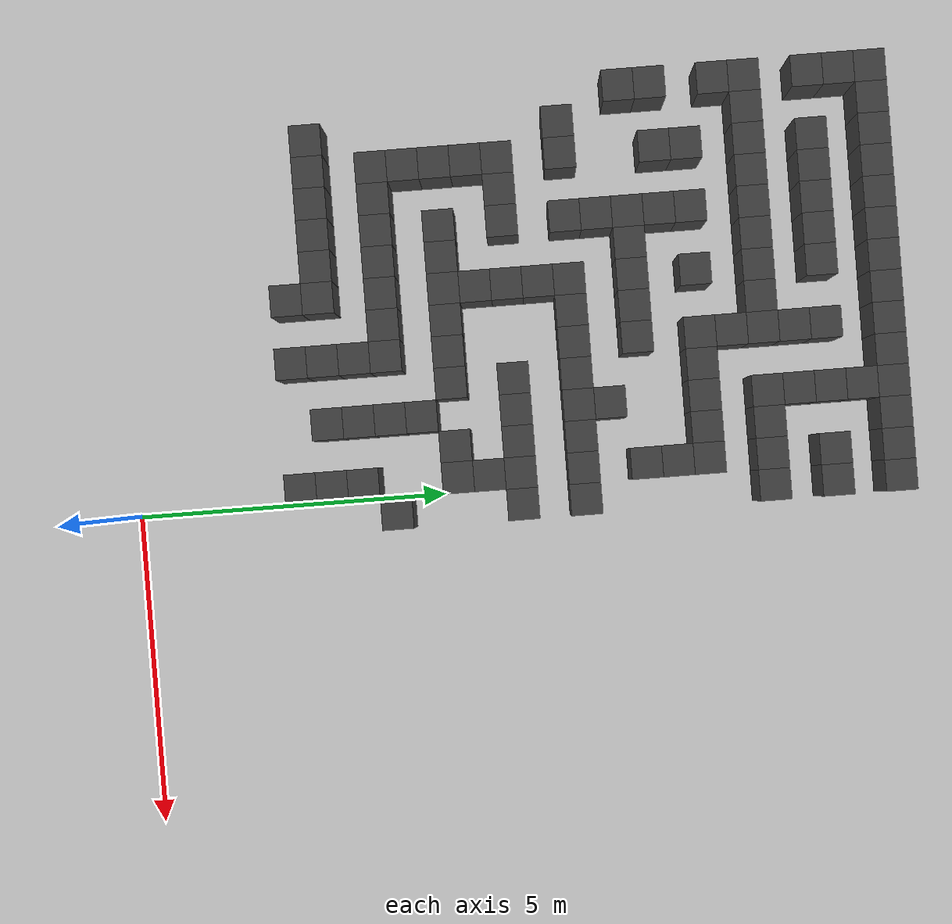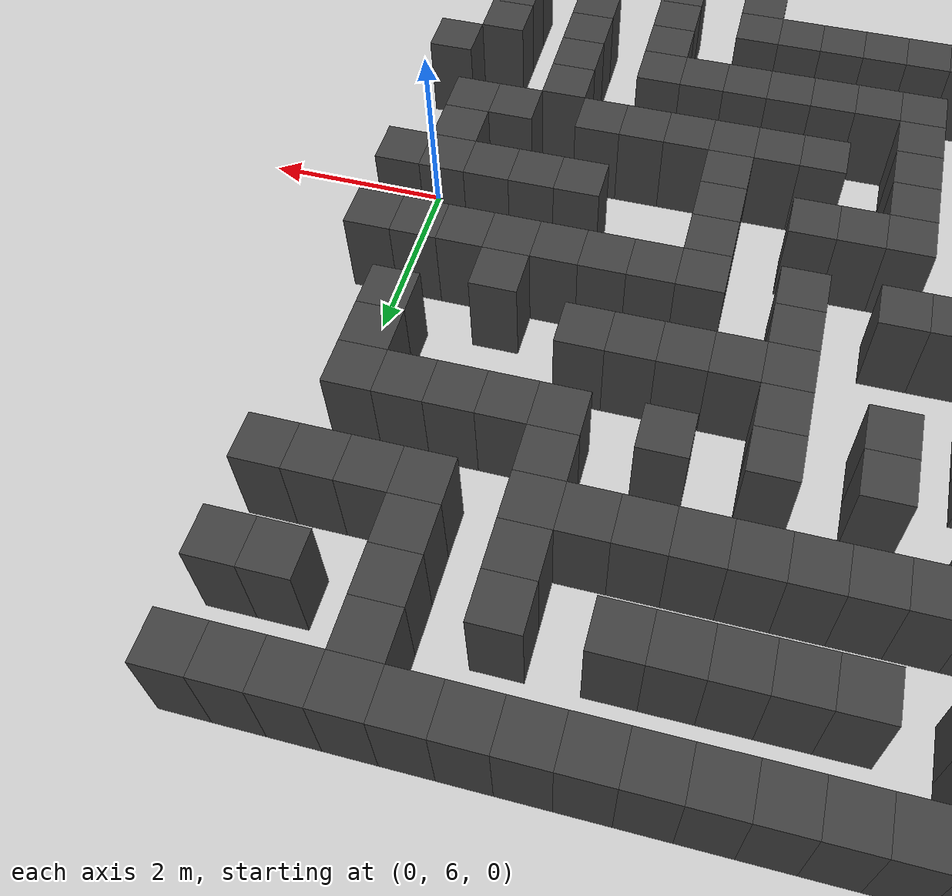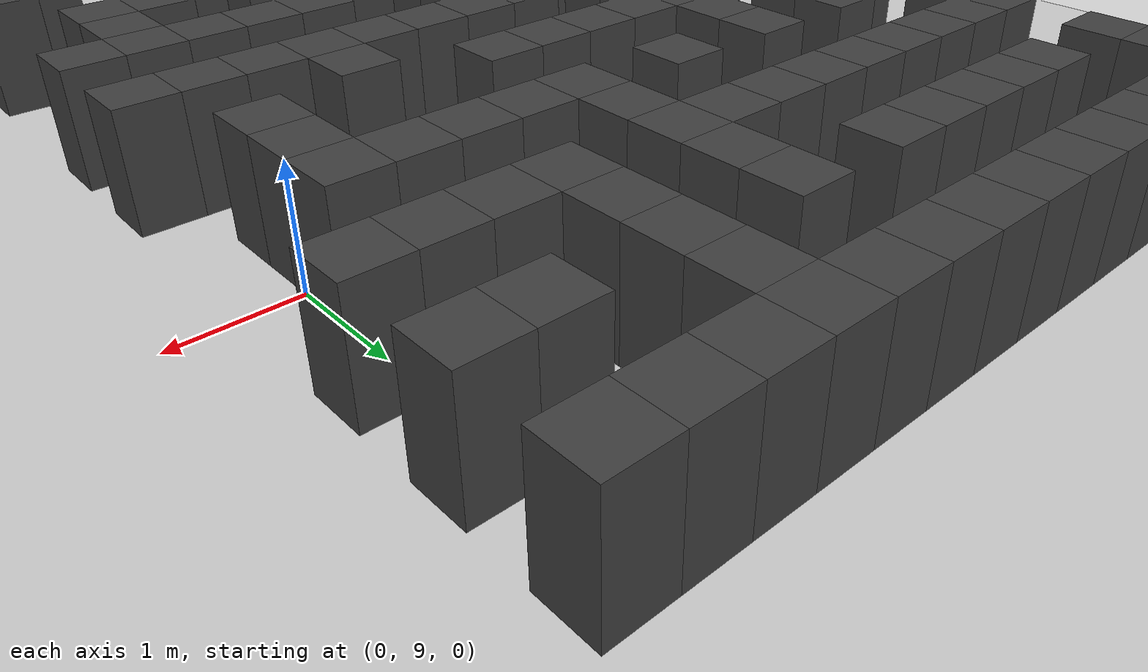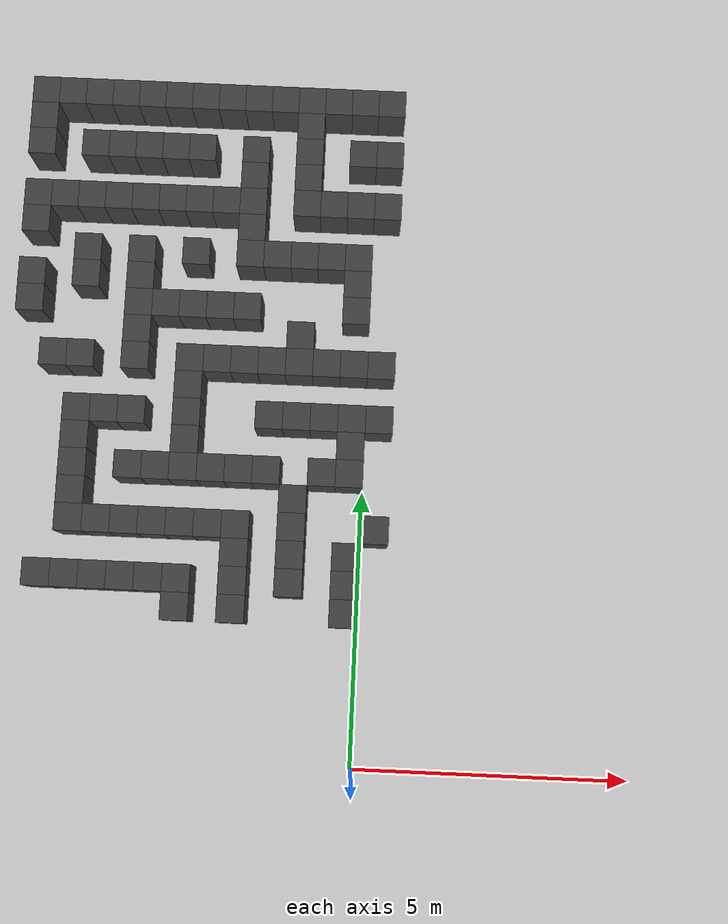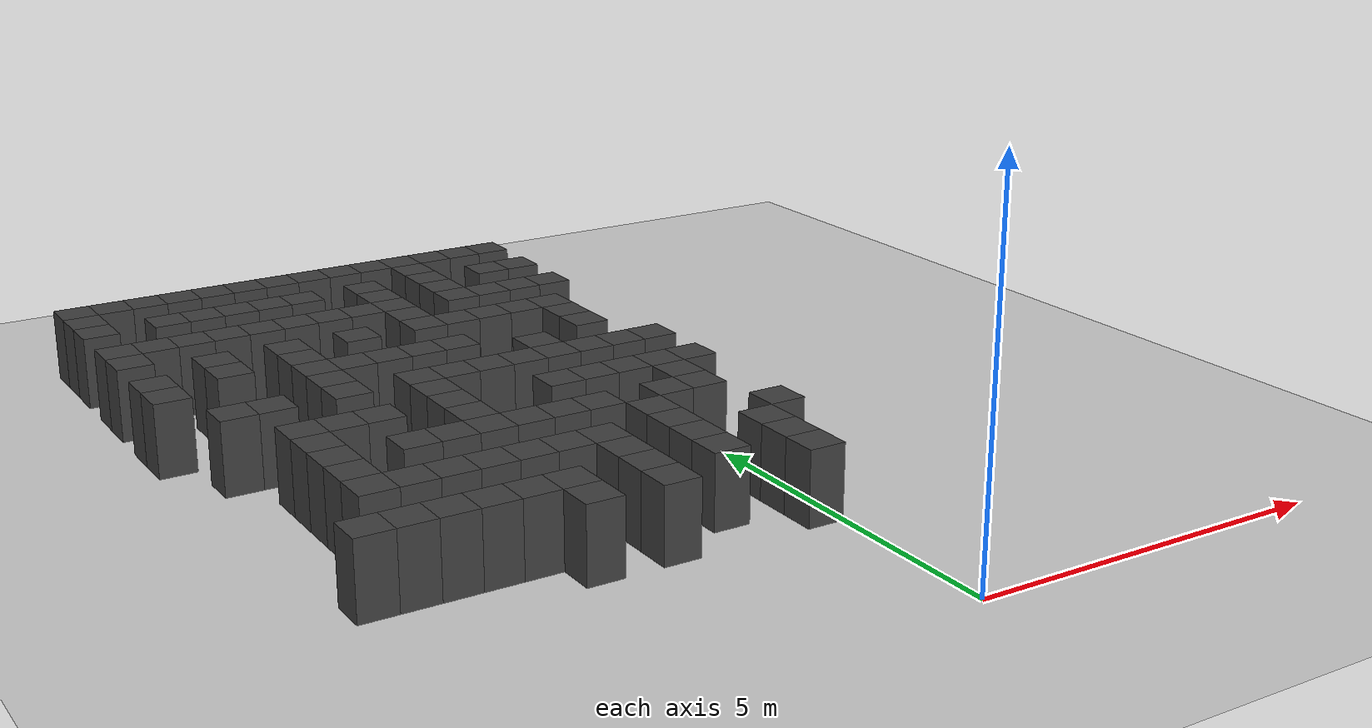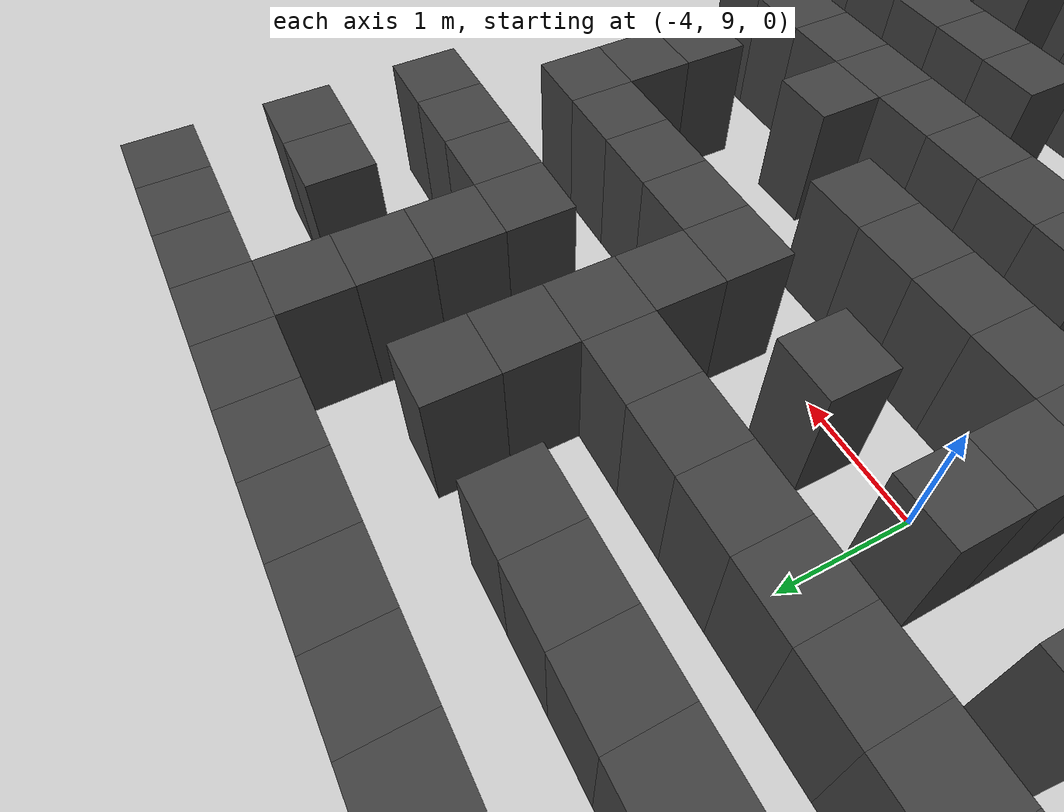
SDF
<sdf version="1.7">
 <world name="map_16271">
  <model name="ground_plane">
   <static>true</static>
   <link name="link">
    <collision name="collision">
     <geometry><plane><normal>0 0 1</normal><size>200 200</size></plane></geometry>
    </collision>
    <visual name="visual">
     <geometry><plane><normal>0 0 1</normal><size>200 200</size></plane></geometry>
     <material><ambient>0.8 0.8 0.8 1</ambient><diffuse>0.8 0.8 0.8 1</diffuse></material>
    </visual>
   </link>
  </model>
  <model name="maze_environment">
   <static>true</static>
   <link name="wall_12">
    <pose>-6.250 12.250 0.500 0 0 0</pose>
    <collision name="col"><geometry><box><size>0.5 0.5 1.0</size></box></geometry></collision>
    <visual name="vis">
     <geometry><box><size>0.5 0.5 1.0</size></box></geometry>
     <material><ambient>0.15 0.15 0.15 1</ambient><diffuse>0.25 0.25 0.25 1</diffuse></material>
    </visual>
   </link>
   <link name="wall_13">
    <pose>-5.750 12.250 0.500 0 0 0</pose>
    <collision name="col"><geometry><box><size>0.5 0.5 1.0</size></box></geometry></collision>
    <visual name="vis">
     <geometry><box><size>0.5 0.5 1.0</size></box></geometry>
     <material><ambient>0.15 0.15 0.15 1</ambient><diffuse>0.25 0.25 0.25 1</diffuse></material>
    </visual>
   </link>
   <link name="wall_14">
    <pose>-5.250 12.250 0.500 0 0 0</pose>
    <collision name="col"><geometry><box><size>0.5 0.5 1.0</size></box></geometry></collision>
    <visual name="vis">
     <geometry><box><size>0.5 0.5 1.0</size></box></geometry>
     <material><ambient>0.15 0.15 0.15 1</ambient><diffuse>0.25 0.25 0.25 1</diffuse></material>
    </visual>
   </link>
   <link name="wall_15">
    <pose>-4.750 12.250 0.500 0 0 0</pose>
    <collision name="col"><geometry><box><size>0.5 0.5 1.0</size></box></geometry></collision>
    <visual name="vis">
     <geometry><box><size>0.5 0.5 1.0</size></box></geometry>
     <material><ambient>0.15 0.15 0.15 1</ambient><diffuse>0.25 0.25 0.25 1</diffuse></material>
    </visual>
   </link>
   <link name="wall_16">
    <pose>-4.250 12.250 0.500 0 0 0</pose>
    <collision name="col"><geometry><box><size>0.5 0.5 1.0</size></box></geometry></collision>
    <visual name="vis">
     <geometry><box><size>0.5 0.5 1.0</size></box></geometry>
     <material><ambient>0.15 0.15 0.15 1</ambient><diffuse>0.25 0.25 0.25 1</diffuse></material>
    </visual>
   </link>
   <link name="wall_17">
    <pose>-3.750 12.250 0.500 0 0 0</pose>
    <collision name="col"><geometry><box><size>0.5 0.5 1.0</size></box></geometry></collision>
    <visual name="vis">
     <geometry><box><size>0.5 0.5 1.0</size></box></geometry>
     <material><ambient>0.15 0.15 0.15 1</ambient><diffuse>0.25 0.25 0.25 1</diffuse></material>
    </visual>
   </link>
   <link name="wall_18">
    <pose>-3.250 12.250 0.500 0 0 0</pose>
    <collision name="col"><geometry><box><size>0.5 0.5 1.0</size></box></geometry></collision>
    <visual name="vis">
     <geometry><box><size>0.5 0.5 1.0</size></box></geometry>
     <material><ambient>0.15 0.15 0.15 1</ambient><diffuse>0.25 0.25 0.25 1</diffuse></material>
    </visual>
   </link>
   <link name="wall_19">
    <pose>-2.750 12.250 0.500 0 0 0</pose>
    <collision name="col"><geometry><box><size>0.5 0.5 1.0</size></box></geometry></collision>
    <visual name="vis">
     <geometry><box><size>0.5 0.5 1.0</size></box></geometry>
     <material><ambient>0.15 0.15 0.15 1</ambient><diffuse>0.25 0.25 0.25 1</diffuse></material>
    </visual>
   </link>
   <link name="wall_20">
    <pose>-2.250 12.250 0.500 0 0 0</pose>
    <collision name="col"><geometry><box><size>0.5 0.5 1.0</size></box></geometry></collision>
    <visual name="vis">
     <geometry><box><size>0.5 0.5 1.0</size></box></geometry>
     <material><ambient>0.15 0.15 0.15 1</ambient><diffuse>0.25 0.25 0.25 1</diffuse></material>
    </visual>
   </link>
   <link name="wall_21">
    <pose>-1.750 12.250 0.500 0 0 0</pose>
    <collision name="col"><geometry><box><size>0.5 0.5 1.0</size></box></geometry></collision>
    <visual name="vis">
     <geometry><box><size>0.5 0.5 1.0</size></box></geometry>
     <material><ambient>0.15 0.15 0.15 1</ambient><diffuse>0.25 0.25 0.25 1</diffuse></material>
    </visual>
   </link>
   <link name="wall_22">
    <pose>-1.250 12.250 0.500 0 0 0</pose>
    <collision name="col"><geometry><box><size>0.5 0.5 1.0</size></box></geometry></collision>
    <visual name="vis">
     <geometry><box><size>0.5 0.5 1.0</size></box></geometry>
     <material><ambient>0.15 0.15 0.15 1</ambient><diffuse>0.25 0.25 0.25 1</diffuse></material>
    </visual>
   </link>
   <link name="wall_23">
    <pose>-0.750 12.250 0.500 0 0 0</pose>
    <collision name="col"><geometry><box><size>0.5 0.5 1.0</size></box></geometry></collision>
    <visual name="vis">
     <geometry><box><size>0.5 0.5 1.0</size></box></geometry>
     <material><ambient>0.15 0.15 0.15 1</ambient><diffuse>0.25 0.25 0.25 1</diffuse></material>
    </visual>
   </link>
   <link name="wall_24">
    <pose>-0.250 12.250 0.500 0 0 0</pose>
    <collision name="col"><geometry><box><size>0.5 0.5 1.0</size></box></geometry></collision>
    <visual name="vis">
     <geometry><box><size>0.5 0.5 1.0</size></box></geometry>
     <material><ambient>0.15 0.15 0.15 1</ambient><diffuse>0.25 0.25 0.25 1</diffuse></material>
    </visual>
   </link>
   <link name="wall_25">
    <pose>0.250 12.250 0.500 0 0 0</pose>
    <collision name="col"><geometry><box><size>0.5 0.5 1.0</size></box></geometry></collision>
    <visual name="vis">
     <geometry><box><size>0.5 0.5 1.0</size></box></geometry>
     <material><ambient>0.15 0.15 0.15 1</ambient><diffuse>0.25 0.25 0.25 1</diffuse></material>
    </visual>
   </link>
   <link name="wall_52">
    <pose>-6.250 11.750 0.500 0 0 0</pose>
    <collision name="col"><geometry><box><size>0.5 0.5 1.0</size></box></geometry></collision>
    <visual name="vis">
     <geometry><box><size>0.5 0.5 1.0</size></box></geometry>
     <material><ambient>0.15 0.15 0.15 1</ambient><diffuse>0.25 0.25 0.25 1</diffuse></material>
    </visual>
   </link>
   <link name="wall_53">
    <pose>-1.250 11.750 0.500 0 0 0</pose>
    <collision name="col"><geometry><box><size>0.5 0.5 1.0</size></box></geometry></collision>
    <visual name="vis">
     <geometry><box><size>0.5 0.5 1.0</size></box></geometry>
     <material><ambient>0.15 0.15 0.15 1</ambient><diffuse>0.25 0.25 0.25 1</diffuse></material>
    </visual>
   </link>
   <link name="wall_67">
    <pose>-6.250 11.250 0.500 0 0 0</pose>
    <collision name="col"><geometry><box><size>0.5 0.5 1.0</size></box></geometry></collision>
    <visual name="vis">
     <geometry><box><size>0.5 0.5 1.0</size></box></geometry>
     <material><ambient>0.15 0.15 0.15 1</ambient><diffuse>0.25 0.25 0.25 1</diffuse></material>
    </visual>
   </link>
   <link name="wall_68">
    <pose>-5.250 11.250 0.500 0 0 0</pose>
    <collision name="col"><geometry><box><size>0.5 0.5 1.0</size></box></geometry></collision>
    <visual name="vis">
     <geometry><box><size>0.5 0.5 1.0</size></box></geometry>
     <material><ambient>0.15 0.15 0.15 1</ambient><diffuse>0.25 0.25 0.25 1</diffuse></material>
    </visual>
   </link>
   <link name="wall_69">
    <pose>-4.750 11.250 0.500 0 0 0</pose>
    <collision name="col"><geometry><box><size>0.5 0.5 1.0</size></box></geometry></collision>
    <visual name="vis">
     <geometry><box><size>0.5 0.5 1.0</size></box></geometry>
     <material><ambient>0.15 0.15 0.15 1</ambient><diffuse>0.25 0.25 0.25 1</diffuse></material>
    </visual>
   </link>
   <link name="wall_70">
    <pose>-4.250 11.250 0.500 0 0 0</pose>
    <collision name="col"><geometry><box><size>0.5 0.5 1.0</size></box></geometry></collision>
    <visual name="vis">
     <geometry><box><size>0.5 0.5 1.0</size></box></geometry>
     <material><ambient>0.15 0.15 0.15 1</ambient><diffuse>0.25 0.25 0.25 1</diffuse></material>
    </visual>
   </link>
   <link name="wall_71">
    <pose>-3.750 11.250 0.500 0 0 0</pose>
    <collision name="col"><geometry><box><size>0.5 0.5 1.0</size></box></geometry></collision>
    <visual name="vis">
     <geometry><box><size>0.5 0.5 1.0</size></box></geometry>
     <material><ambient>0.15 0.15 0.15 1</ambient><diffuse>0.25 0.25 0.25 1</diffuse></material>
    </visual>
   </link>
   <link name="wall_72">
    <pose>-3.250 11.250 0.500 0 0 0</pose>
    <collision name="col"><geometry><box><size>0.5 0.5 1.0</size></box></geometry></collision>
    <visual name="vis">
     <geometry><box><size>0.5 0.5 1.0</size></box></geometry>
     <material><ambient>0.15 0.15 0.15 1</ambient><diffuse>0.25 0.25 0.25 1</diffuse></material>
    </visual>
   </link>
   <link name="wall_73">
    <pose>-2.250 11.250 0.500 0 0 0</pose>
    <collision name="col"><geometry><box><size>0.5 0.5 1.0</size></box></geometry></collision>
    <visual name="vis">
     <geometry><box><size>0.5 0.5 1.0</size></box></geometry>
     <material><ambient>0.15 0.15 0.15 1</ambient><diffuse>0.25 0.25 0.25 1</diffuse></material>
    </visual>
   </link>
   <link name="wall_74">
    <pose>-1.250 11.250 0.500 0 0 0</pose>
    <collision name="col"><geometry><box><size>0.5 0.5 1.0</size></box></geometry></collision>
    <visual name="vis">
     <geometry><box><size>0.5 0.5 1.0</size></box></geometry>
     <material><ambient>0.15 0.15 0.15 1</ambient><diffuse>0.25 0.25 0.25 1</diffuse></material>
    </visual>
   </link>
   <link name="wall_75">
    <pose>-0.250 11.250 0.500 0 0 0</pose>
    <collision name="col"><geometry><box><size>0.5 0.5 1.0</size></box></geometry></collision>
    <visual name="vis">
     <geometry><box><size>0.5 0.5 1.0</size></box></geometry>
     <material><ambient>0.15 0.15 0.15 1</ambient><diffuse>0.25 0.25 0.25 1</diffuse></material>
    </visual>
   </link>
   <link name="wall_76">
    <pose>0.250 11.250 0.500 0 0 0</pose>
    <collision name="col"><geometry><box><size>0.5 0.5 1.0</size></box></geometry></collision>
    <visual name="vis">
     <geometry><box><size>0.5 0.5 1.0</size></box></geometry>
     <material><ambient>0.15 0.15 0.15 1</ambient><diffuse>0.25 0.25 0.25 1</diffuse></material>
    </visual>
   </link>
   <link name="wall_98">
    <pose>-2.250 10.750 0.500 0 0 0</pose>
    <collision name="col"><geometry><box><size>0.5 0.5 1.0</size></box></geometry></collision>
    <visual name="vis">
     <geometry><box><size>0.5 0.5 1.0</size></box></geometry>
     <material><ambient>0.15 0.15 0.15 1</ambient><diffuse>0.25 0.25 0.25 1</diffuse></material>
    </visual>
   </link>
   <link name="wall_99">
    <pose>-1.250 10.750 0.500 0 0 0</pose>
    <collision name="col"><geometry><box><size>0.5 0.5 1.0</size></box></geometry></collision>
    <visual name="vis">
     <geometry><box><size>0.5 0.5 1.0</size></box></geometry>
     <material><ambient>0.15 0.15 0.15 1</ambient><diffuse>0.25 0.25 0.25 1</diffuse></material>
    </visual>
   </link>
   <link name="wall_116">
    <pose>-6.250 10.250 0.500 0 0 0</pose>
    <collision name="col"><geometry><box><size>0.5 0.5 1.0</size></box></geometry></collision>
    <visual name="vis">
     <geometry><box><size>0.5 0.5 1.0</size></box></geometry>
     <material><ambient>0.15 0.15 0.15 1</ambient><diffuse>0.25 0.25 0.25 1</diffuse></material>
    </visual>
   </link>
   <link name="wall_117">
    <pose>-5.750 10.250 0.500 0 0 0</pose>
    <collision name="col"><geometry><box><size>0.5 0.5 1.0</size></box></geometry></collision>
    <visual name="vis">
     <geometry><box><size>0.5 0.5 1.0</size></box></geometry>
     <material><ambient>0.15 0.15 0.15 1</ambient><diffuse>0.25 0.25 0.25 1</diffuse></material>
    </visual>
   </link>
   <link name="wall_118">
    <pose>-5.250 10.250 0.500 0 0 0</pose>
    <collision name="col"><geometry><box><size>0.5 0.5 1.0</size></box></geometry></collision>
    <visual name="vis">
     <geometry><box><size>0.5 0.5 1.0</size></box></geometry>
     <material><ambient>0.15 0.15 0.15 1</ambient><diffuse>0.25 0.25 0.25 1</diffuse></material>
    </visual>
   </link>
   <link name="wall_119">
    <pose>-4.750 10.250 0.500 0 0 0</pose>
    <collision name="col"><geometry><box><size>0.5 0.5 1.0</size></box></geometry></collision>
    <visual name="vis">
     <geometry><box><size>0.5 0.5 1.0</size></box></geometry>
     <material><ambient>0.15 0.15 0.15 1</ambient><diffuse>0.25 0.25 0.25 1</diffuse></material>
    </visual>
   </link>
   <link name="wall_120">
    <pose>-4.250 10.250 0.500 0 0 0</pose>
    <collision name="col"><geometry><box><size>0.5 0.5 1.0</size></box></geometry></collision>
    <visual name="vis">
     <geometry><box><size>0.5 0.5 1.0</size></box></geometry>
     <material><ambient>0.15 0.15 0.15 1</ambient><diffuse>0.25 0.25 0.25 1</diffuse></material>
    </visual>
   </link>
   <link name="wall_121">
    <pose>-3.750 10.250 0.500 0 0 0</pose>
    <collision name="col"><geometry><box><size>0.5 0.5 1.0</size></box></geometry></collision>
    <visual name="vis">
     <geometry><box><size>0.5 0.5 1.0</size></box></geometry>
     <material><ambient>0.15 0.15 0.15 1</ambient><diffuse>0.25 0.25 0.25 1</diffuse></material>
    </visual>
   </link>
   <link name="wall_122">
    <pose>-3.250 10.250 0.500 0 0 0</pose>
    <collision name="col"><geometry><box><size>0.5 0.5 1.0</size></box></geometry></collision>
    <visual name="vis">
     <geometry><box><size>0.5 0.5 1.0</size></box></geometry>
     <material><ambient>0.15 0.15 0.15 1</ambient><diffuse>0.25 0.25 0.25 1</diffuse></material>
    </visual>
   </link>
   <link name="wall_123">
    <pose>-2.750 10.250 0.500 0 0 0</pose>
    <collision name="col"><geometry><box><size>0.5 0.5 1.0</size></box></geometry></collision>
    <visual name="vis">
     <geometry><box><size>0.5 0.5 1.0</size></box></geometry>
     <material><ambient>0.15 0.15 0.15 1</ambient><diffuse>0.25 0.25 0.25 1</diffuse></material>
    </visual>
   </link>
   <link name="wall_124">
    <pose>-2.250 10.250 0.500 0 0 0</pose>
    <collision name="col"><geometry><box><size>0.5 0.5 1.0</size></box></geometry></collision>
    <visual name="vis">
     <geometry><box><size>0.5 0.5 1.0</size></box></geometry>
     <material><ambient>0.15 0.15 0.15 1</ambient><diffuse>0.25 0.25 0.25 1</diffuse></material>
    </visual>
   </link>
   <link name="wall_125">
    <pose>-1.250 10.250 0.500 0 0 0</pose>
    <collision name="col"><geometry><box><size>0.5 0.5 1.0</size></box></geometry></collision>
    <visual name="vis">
     <geometry><box><size>0.5 0.5 1.0</size></box></geometry>
     <material><ambient>0.15 0.15 0.15 1</ambient><diffuse>0.25 0.25 0.25 1</diffuse></material>
    </visual>
   </link>
   <link name="wall_126">
    <pose>-0.750 10.250 0.500 0 0 0</pose>
    <collision name="col"><geometry><box><size>0.5 0.5 1.0</size></box></geometry></collision>
    <visual name="vis">
     <geometry><box><size>0.5 0.5 1.0</size></box></geometry>
     <material><ambient>0.15 0.15 0.15 1</ambient><diffuse>0.25 0.25 0.25 1</diffuse></material>
    </visual>
   </link>
   <link name="wall_127">
    <pose>-0.250 10.250 0.500 0 0 0</pose>
    <collision name="col"><geometry><box><size>0.5 0.5 1.0</size></box></geometry></collision>
    <visual name="vis">
     <geometry><box><size>0.5 0.5 1.0</size></box></geometry>
     <material><ambient>0.15 0.15 0.15 1</ambient><diffuse>0.25 0.25 0.25 1</diffuse></material>
    </visual>
   </link>
   <link name="wall_128">
    <pose>0.250 10.250 0.500 0 0 0</pose>
    <collision name="col"><geometry><box><size>0.5 0.5 1.0</size></box></geometry></collision>
    <visual name="vis">
     <geometry><box><size>0.5 0.5 1.0</size></box></geometry>
     <material><ambient>0.15 0.15 0.15 1</ambient><diffuse>0.25 0.25 0.25 1</diffuse></material>
    </visual>
   </link>
   <link name="wall_150">
    <pose>-6.250 9.750 0.500 0 0 0</pose>
    <collision name="col"><geometry><box><size>0.5 0.5 1.0</size></box></geometry></collision>
    <visual name="vis">
     <geometry><box><size>0.5 0.5 1.0</size></box></geometry>
     <material><ambient>0.15 0.15 0.15 1</ambient><diffuse>0.25 0.25 0.25 1</diffuse></material>
    </visual>
   </link>
   <link name="wall_151">
    <pose>-2.250 9.750 0.500 0 0 0</pose>
    <collision name="col"><geometry><box><size>0.5 0.5 1.0</size></box></geometry></collision>
    <visual name="vis">
     <geometry><box><size>0.5 0.5 1.0</size></box></geometry>
     <material><ambient>0.15 0.15 0.15 1</ambient><diffuse>0.25 0.25 0.25 1</diffuse></material>
    </visual>
   </link>
   <link name="wall_167">
    <pose>-5.250 9.250 0.500 0 0 0</pose>
    <collision name="col"><geometry><box><size>0.5 0.5 1.0</size></box></geometry></collision>
    <visual name="vis">
     <geometry><box><size>0.5 0.5 1.0</size></box></geometry>
     <material><ambient>0.15 0.15 0.15 1</ambient><diffuse>0.25 0.25 0.25 1</diffuse></material>
    </visual>
   </link>
   <link name="wall_168">
    <pose>-4.250 9.250 0.500 0 0 0</pose>
    <collision name="col"><geometry><box><size>0.5 0.5 1.0</size></box></geometry></collision>
    <visual name="vis">
     <geometry><box><size>0.5 0.5 1.0</size></box></geometry>
     <material><ambient>0.15 0.15 0.15 1</ambient><diffuse>0.25 0.25 0.25 1</diffuse></material>
    </visual>
   </link>
   <link name="wall_169">
    <pose>-3.250 9.250 0.500 0 0 0</pose>
    <collision name="col"><geometry><box><size>0.5 0.5 1.0</size></box></geometry></collision>
    <visual name="vis">
     <geometry><box><size>0.5 0.5 1.0</size></box></geometry>
     <material><ambient>0.15 0.15 0.15 1</ambient><diffuse>0.25 0.25 0.25 1</diffuse></material>
    </visual>
   </link>
   <link name="wall_170">
    <pose>-2.250 9.250 0.500 0 0 0</pose>
    <collision name="col"><geometry><box><size>0.5 0.5 1.0</size></box></geometry></collision>
    <visual name="vis">
     <geometry><box><size>0.5 0.5 1.0</size></box></geometry>
     <material><ambient>0.15 0.15 0.15 1</ambient><diffuse>0.25 0.25 0.25 1</diffuse></material>
    </visual>
   </link>
   <link name="wall_171">
    <pose>-1.750 9.250 0.500 0 0 0</pose>
    <collision name="col"><geometry><box><size>0.5 0.5 1.0</size></box></geometry></collision>
    <visual name="vis">
     <geometry><box><size>0.5 0.5 1.0</size></box></geometry>
     <material><ambient>0.15 0.15 0.15 1</ambient><diffuse>0.25 0.25 0.25 1</diffuse></material>
    </visual>
   </link>
   <link name="wall_172">
    <pose>-1.250 9.250 0.500 0 0 0</pose>
    <collision name="col"><geometry><box><size>0.5 0.5 1.0</size></box></geometry></collision>
    <visual name="vis">
     <geometry><box><size>0.5 0.5 1.0</size></box></geometry>
     <material><ambient>0.15 0.15 0.15 1</ambient><diffuse>0.25 0.25 0.25 1</diffuse></material>
    </visual>
   </link>
   <link name="wall_173">
    <pose>-0.750 9.250 0.500 0 0 0</pose>
    <collision name="col"><geometry><box><size>0.5 0.5 1.0</size></box></geometry></collision>
    <visual name="vis">
     <geometry><box><size>0.5 0.5 1.0</size></box></geometry>
     <material><ambient>0.15 0.15 0.15 1</ambient><diffuse>0.25 0.25 0.25 1</diffuse></material>
    </visual>
   </link>
   <link name="wall_174">
    <pose>-0.250 9.250 0.500 0 0 0</pose>
    <collision name="col"><geometry><box><size>0.5 0.5 1.0</size></box></geometry></collision>
    <visual name="vis">
     <geometry><box><size>0.5 0.5 1.0</size></box></geometry>
     <material><ambient>0.15 0.15 0.15 1</ambient><diffuse>0.25 0.25 0.25 1</diffuse></material>
    </visual>
   </link>
   <link name="wall_194">
    <pose>-6.250 8.750 0.500 0 0 0</pose>
    <collision name="col"><geometry><box><size>0.5 0.5 1.0</size></box></geometry></collision>
    <visual name="vis">
     <geometry><box><size>0.5 0.5 1.0</size></box></geometry>
     <material><ambient>0.15 0.15 0.15 1</ambient><diffuse>0.25 0.25 0.25 1</diffuse></material>
    </visual>
   </link>
   <link name="wall_195">
    <pose>-5.250 8.750 0.500 0 0 0</pose>
    <collision name="col"><geometry><box><size>0.5 0.5 1.0</size></box></geometry></collision>
    <visual name="vis">
     <geometry><box><size>0.5 0.5 1.0</size></box></geometry>
     <material><ambient>0.15 0.15 0.15 1</ambient><diffuse>0.25 0.25 0.25 1</diffuse></material>
    </visual>
   </link>
   <link name="wall_196">
    <pose>-4.250 8.750 0.500 0 0 0</pose>
    <collision name="col"><geometry><box><size>0.5 0.5 1.0</size></box></geometry></collision>
    <visual name="vis">
     <geometry><box><size>0.5 0.5 1.0</size></box></geometry>
     <material><ambient>0.15 0.15 0.15 1</ambient><diffuse>0.25 0.25 0.25 1</diffuse></material>
    </visual>
   </link>
   <link name="wall_197">
    <pose>-0.250 8.750 0.500 0 0 0</pose>
    <collision name="col"><geometry><box><size>0.5 0.5 1.0</size></box></geometry></collision>
    <visual name="vis">
     <geometry><box><size>0.5 0.5 1.0</size></box></geometry>
     <material><ambient>0.15 0.15 0.15 1</ambient><diffuse>0.25 0.25 0.25 1</diffuse></material>
    </visual>
   </link>
   <link name="wall_214">
    <pose>-6.250 8.250 0.500 0 0 0</pose>
    <collision name="col"><geometry><box><size>0.5 0.5 1.0</size></box></geometry></collision>
    <visual name="vis">
     <geometry><box><size>0.5 0.5 1.0</size></box></geometry>
     <material><ambient>0.15 0.15 0.15 1</ambient><diffuse>0.25 0.25 0.25 1</diffuse></material>
    </visual>
   </link>
   <link name="wall_215">
    <pose>-4.250 8.250 0.500 0 0 0</pose>
    <collision name="col"><geometry><box><size>0.5 0.5 1.0</size></box></geometry></collision>
    <visual name="vis">
     <geometry><box><size>0.5 0.5 1.0</size></box></geometry>
     <material><ambient>0.15 0.15 0.15 1</ambient><diffuse>0.25 0.25 0.25 1</diffuse></material>
    </visual>
   </link>
   <link name="wall_216">
    <pose>-3.750 8.250 0.500 0 0 0</pose>
    <collision name="col"><geometry><box><size>0.5 0.5 1.0</size></box></geometry></collision>
    <visual name="vis">
     <geometry><box><size>0.5 0.5 1.0</size></box></geometry>
     <material><ambient>0.15 0.15 0.15 1</ambient><diffuse>0.25 0.25 0.25 1</diffuse></material>
    </visual>
   </link>
   <link name="wall_217">
    <pose>-3.250 8.250 0.500 0 0 0</pose>
    <collision name="col"><geometry><box><size>0.5 0.5 1.0</size></box></geometry></collision>
    <visual name="vis">
     <geometry><box><size>0.5 0.5 1.0</size></box></geometry>
     <material><ambient>0.15 0.15 0.15 1</ambient><diffuse>0.25 0.25 0.25 1</diffuse></material>
    </visual>
   </link>
   <link name="wall_218">
    <pose>-2.750 8.250 0.500 0 0 0</pose>
    <collision name="col"><geometry><box><size>0.5 0.5 1.0</size></box></geometry></collision>
    <visual name="vis">
     <geometry><box><size>0.5 0.5 1.0</size></box></geometry>
     <material><ambient>0.15 0.15 0.15 1</ambient><diffuse>0.25 0.25 0.25 1</diffuse></material>
    </visual>
   </link>
   <link name="wall_219">
    <pose>-2.250 8.250 0.500 0 0 0</pose>
    <collision name="col"><geometry><box><size>0.5 0.5 1.0</size></box></geometry></collision>
    <visual name="vis">
     <geometry><box><size>0.5 0.5 1.0</size></box></geometry>
     <material><ambient>0.15 0.15 0.15 1</ambient><diffuse>0.25 0.25 0.25 1</diffuse></material>
    </visual>
   </link>
   <link name="wall_220">
    <pose>-0.250 8.250 0.500 0 0 0</pose>
    <collision name="col"><geometry><box><size>0.5 0.5 1.0</size></box></geometry></collision>
    <visual name="vis">
     <geometry><box><size>0.5 0.5 1.0</size></box></geometry>
     <material><ambient>0.15 0.15 0.15 1</ambient><diffuse>0.25 0.25 0.25 1</diffuse></material>
    </visual>
   </link>
   <link name="wall_242">
    <pose>-4.250 7.750 0.500 0 0 0</pose>
    <collision name="col"><geometry><box><size>0.5 0.5 1.0</size></box></geometry></collision>
    <visual name="vis">
     <geometry><box><size>0.5 0.5 1.0</size></box></geometry>
     <material><ambient>0.15 0.15 0.15 1</ambient><diffuse>0.25 0.25 0.25 1</diffuse></material>
    </visual>
   </link>
   <link name="wall_243">
    <pose>-1.250 7.750 0.500 0 0 0</pose>
    <collision name="col"><geometry><box><size>0.5 0.5 1.0</size></box></geometry></collision>
    <visual name="vis">
     <geometry><box><size>0.5 0.5 1.0</size></box></geometry>
     <material><ambient>0.15 0.15 0.15 1</ambient><diffuse>0.25 0.25 0.25 1</diffuse></material>
    </visual>
   </link>
   <link name="wall_258">
    <pose>-5.750 7.250 0.500 0 0 0</pose>
    <collision name="col"><geometry><box><size>0.5 0.5 1.0</size></box></geometry></collision>
    <visual name="vis">
     <geometry><box><size>0.5 0.5 1.0</size></box></geometry>
     <material><ambient>0.15 0.15 0.15 1</ambient><diffuse>0.25 0.25 0.25 1</diffuse></material>
    </visual>
   </link>
   <link name="wall_259">
    <pose>-5.250 7.250 0.500 0 0 0</pose>
    <collision name="col"><geometry><box><size>0.5 0.5 1.0</size></box></geometry></collision>
    <visual name="vis">
     <geometry><box><size>0.5 0.5 1.0</size></box></geometry>
     <material><ambient>0.15 0.15 0.15 1</ambient><diffuse>0.25 0.25 0.25 1</diffuse></material>
    </visual>
   </link>
   <link name="wall_260">
    <pose>-4.250 7.250 0.500 0 0 0</pose>
    <collision name="col"><geometry><box><size>0.5 0.5 1.0</size></box></geometry></collision>
    <visual name="vis">
     <geometry><box><size>0.5 0.5 1.0</size></box></geometry>
     <material><ambient>0.15 0.15 0.15 1</ambient><diffuse>0.25 0.25 0.25 1</diffuse></material>
    </visual>
   </link>
   <link name="wall_261">
    <pose>-3.250 7.250 0.500 0 0 0</pose>
    <collision name="col"><geometry><box><size>0.5 0.5 1.0</size></box></geometry></collision>
    <visual name="vis">
     <geometry><box><size>0.5 0.5 1.0</size></box></geometry>
     <material><ambient>0.15 0.15 0.15 1</ambient><diffuse>0.25 0.25 0.25 1</diffuse></material>
    </visual>
   </link>
   <link name="wall_262">
    <pose>-2.750 7.250 0.500 0 0 0</pose>
    <collision name="col"><geometry><box><size>0.5 0.5 1.0</size></box></geometry></collision>
    <visual name="vis">
     <geometry><box><size>0.5 0.5 1.0</size></box></geometry>
     <material><ambient>0.15 0.15 0.15 1</ambient><diffuse>0.25 0.25 0.25 1</diffuse></material>
    </visual>
   </link>
   <link name="wall_263">
    <pose>-2.250 7.250 0.500 0 0 0</pose>
    <collision name="col"><geometry><box><size>0.5 0.5 1.0</size></box></geometry></collision>
    <visual name="vis">
     <geometry><box><size>0.5 0.5 1.0</size></box></geometry>
     <material><ambient>0.15 0.15 0.15 1</ambient><diffuse>0.25 0.25 0.25 1</diffuse></material>
    </visual>
   </link>
   <link name="wall_264">
    <pose>-1.750 7.250 0.500 0 0 0</pose>
    <collision name="col"><geometry><box><size>0.5 0.5 1.0</size></box></geometry></collision>
    <visual name="vis">
     <geometry><box><size>0.5 0.5 1.0</size></box></geometry>
     <material><ambient>0.15 0.15 0.15 1</ambient><diffuse>0.25 0.25 0.25 1</diffuse></material>
    </visual>
   </link>
   <link name="wall_265">
    <pose>-1.250 7.250 0.500 0 0 0</pose>
    <collision name="col"><geometry><box><size>0.5 0.5 1.0</size></box></geometry></collision>
    <visual name="vis">
     <geometry><box><size>0.5 0.5 1.0</size></box></geometry>
     <material><ambient>0.15 0.15 0.15 1</ambient><diffuse>0.25 0.25 0.25 1</diffuse></material>
    </visual>
   </link>
   <link name="wall_266">
    <pose>-0.750 7.250 0.500 0 0 0</pose>
    <collision name="col"><geometry><box><size>0.5 0.5 1.0</size></box></geometry></collision>
    <visual name="vis">
     <geometry><box><size>0.5 0.5 1.0</size></box></geometry>
     <material><ambient>0.15 0.15 0.15 1</ambient><diffuse>0.25 0.25 0.25 1</diffuse></material>
    </visual>
   </link>
   <link name="wall_267">
    <pose>-0.250 7.250 0.500 0 0 0</pose>
    <collision name="col"><geometry><box><size>0.5 0.5 1.0</size></box></geometry></collision>
    <visual name="vis">
     <geometry><box><size>0.5 0.5 1.0</size></box></geometry>
     <material><ambient>0.15 0.15 0.15 1</ambient><diffuse>0.25 0.25 0.25 1</diffuse></material>
    </visual>
   </link>
   <link name="wall_268">
    <pose>0.250 7.250 0.500 0 0 0</pose>
    <collision name="col"><geometry><box><size>0.5 0.5 1.0</size></box></geometry></collision>
    <visual name="vis">
     <geometry><box><size>0.5 0.5 1.0</size></box></geometry>
     <material><ambient>0.15 0.15 0.15 1</ambient><diffuse>0.25 0.25 0.25 1</diffuse></material>
    </visual>
   </link>
   <link name="wall_290">
    <pose>-3.250 6.750 0.500 0 0 0</pose>
    <collision name="col"><geometry><box><size>0.5 0.5 1.0</size></box></geometry></collision>
    <visual name="vis">
     <geometry><box><size>0.5 0.5 1.0</size></box></geometry>
     <material><ambient>0.15 0.15 0.15 1</ambient><diffuse>0.25 0.25 0.25 1</diffuse></material>
    </visual>
   </link>
   <link name="wall_305">
    <pose>-5.250 6.250 0.500 0 0 0</pose>
    <collision name="col"><geometry><box><size>0.5 0.5 1.0</size></box></geometry></collision>
    <visual name="vis">
     <geometry><box><size>0.5 0.5 1.0</size></box></geometry>
     <material><ambient>0.15 0.15 0.15 1</ambient><diffuse>0.25 0.25 0.25 1</diffuse></material>
    </visual>
   </link>
   <link name="wall_306">
    <pose>-4.750 6.250 0.500 0 0 0</pose>
    <collision name="col"><geometry><box><size>0.5 0.5 1.0</size></box></geometry></collision>
    <visual name="vis">
     <geometry><box><size>0.5 0.5 1.0</size></box></geometry>
     <material><ambient>0.15 0.15 0.15 1</ambient><diffuse>0.25 0.25 0.25 1</diffuse></material>
    </visual>
   </link>
   <link name="wall_307">
    <pose>-4.250 6.250 0.500 0 0 0</pose>
    <collision name="col"><geometry><box><size>0.5 0.5 1.0</size></box></geometry></collision>
    <visual name="vis">
     <geometry><box><size>0.5 0.5 1.0</size></box></geometry>
     <material><ambient>0.15 0.15 0.15 1</ambient><diffuse>0.25 0.25 0.25 1</diffuse></material>
    </visual>
   </link>
   <link name="wall_308">
    <pose>-3.250 6.250 0.500 0 0 0</pose>
    <collision name="col"><geometry><box><size>0.5 0.5 1.0</size></box></geometry></collision>
    <visual name="vis">
     <geometry><box><size>0.5 0.5 1.0</size></box></geometry>
     <material><ambient>0.15 0.15 0.15 1</ambient><diffuse>0.25 0.25 0.25 1</diffuse></material>
    </visual>
   </link>
   <link name="wall_309">
    <pose>-1.750 6.250 0.500 0 0 0</pose>
    <collision name="col"><geometry><box><size>0.5 0.5 1.0</size></box></geometry></collision>
    <visual name="vis">
     <geometry><box><size>0.5 0.5 1.0</size></box></geometry>
     <material><ambient>0.15 0.15 0.15 1</ambient><diffuse>0.25 0.25 0.25 1</diffuse></material>
    </visual>
   </link>
   <link name="wall_310">
    <pose>-1.250 6.250 0.500 0 0 0</pose>
    <collision name="col"><geometry><box><size>0.5 0.5 1.0</size></box></geometry></collision>
    <visual name="vis">
     <geometry><box><size>0.5 0.5 1.0</size></box></geometry>
     <material><ambient>0.15 0.15 0.15 1</ambient><diffuse>0.25 0.25 0.25 1</diffuse></material>
    </visual>
   </link>
   <link name="wall_311">
    <pose>-0.750 6.250 0.500 0 0 0</pose>
    <collision name="col"><geometry><box><size>0.5 0.5 1.0</size></box></geometry></collision>
    <visual name="vis">
     <geometry><box><size>0.5 0.5 1.0</size></box></geometry>
     <material><ambient>0.15 0.15 0.15 1</ambient><diffuse>0.25 0.25 0.25 1</diffuse></material>
    </visual>
   </link>
   <link name="wall_312">
    <pose>-0.250 6.250 0.500 0 0 0</pose>
    <collision name="col"><geometry><box><size>0.5 0.5 1.0</size></box></geometry></collision>
    <visual name="vis">
     <geometry><box><size>0.5 0.5 1.0</size></box></geometry>
     <material><ambient>0.15 0.15 0.15 1</ambient><diffuse>0.25 0.25 0.25 1</diffuse></material>
    </visual>
   </link>
   <link name="wall_313">
    <pose>0.250 6.250 0.500 0 0 0</pose>
    <collision name="col"><geometry><box><size>0.5 0.5 1.0</size></box></geometry></collision>
    <visual name="vis">
     <geometry><box><size>0.5 0.5 1.0</size></box></geometry>
     <material><ambient>0.15 0.15 0.15 1</ambient><diffuse>0.25 0.25 0.25 1</diffuse></material>
    </visual>
   </link>
   <link name="wall_335">
    <pose>-5.250 5.750 0.500 0 0 0</pose>
    <collision name="col"><geometry><box><size>0.5 0.5 1.0</size></box></geometry></collision>
    <visual name="vis">
     <geometry><box><size>0.5 0.5 1.0</size></box></geometry>
     <material><ambient>0.15 0.15 0.15 1</ambient><diffuse>0.25 0.25 0.25 1</diffuse></material>
    </visual>
   </link>
   <link name="wall_336">
    <pose>-3.250 5.750 0.500 0 0 0</pose>
    <collision name="col"><geometry><box><size>0.5 0.5 1.0</size></box></geometry></collision>
    <visual name="vis">
     <geometry><box><size>0.5 0.5 1.0</size></box></geometry>
     <material><ambient>0.15 0.15 0.15 1</ambient><diffuse>0.25 0.25 0.25 1</diffuse></material>
    </visual>
   </link>
   <link name="wall_337">
    <pose>-0.250 5.750 0.500 0 0 0</pose>
    <collision name="col"><geometry><box><size>0.5 0.5 1.0</size></box></geometry></collision>
    <visual name="vis">
     <geometry><box><size>0.5 0.5 1.0</size></box></geometry>
     <material><ambient>0.15 0.15 0.15 1</ambient><diffuse>0.25 0.25 0.25 1</diffuse></material>
    </visual>
   </link>
   <link name="wall_354">
    <pose>-5.250 5.250 0.500 0 0 0</pose>
    <collision name="col"><geometry><box><size>0.5 0.5 1.0</size></box></geometry></collision>
    <visual name="vis">
     <geometry><box><size>0.5 0.5 1.0</size></box></geometry>
     <material><ambient>0.15 0.15 0.15 1</ambient><diffuse>0.25 0.25 0.25 1</diffuse></material>
    </visual>
   </link>
   <link name="wall_355">
    <pose>-4.250 5.250 0.500 0 0 0</pose>
    <collision name="col"><geometry><box><size>0.5 0.5 1.0</size></box></geometry></collision>
    <visual name="vis">
     <geometry><box><size>0.5 0.5 1.0</size></box></geometry>
     <material><ambient>0.15 0.15 0.15 1</ambient><diffuse>0.25 0.25 0.25 1</diffuse></material>
    </visual>
   </link>
   <link name="wall_356">
    <pose>-3.750 5.250 0.500 0 0 0</pose>
    <collision name="col"><geometry><box><size>0.5 0.5 1.0</size></box></geometry></collision>
    <visual name="vis">
     <geometry><box><size>0.5 0.5 1.0</size></box></geometry>
     <material><ambient>0.15 0.15 0.15 1</ambient><diffuse>0.25 0.25 0.25 1</diffuse></material>
    </visual>
   </link>
   <link name="wall_357">
    <pose>-3.250 5.250 0.500 0 0 0</pose>
    <collision name="col"><geometry><box><size>0.5 0.5 1.0</size></box></geometry></collision>
    <visual name="vis">
     <geometry><box><size>0.5 0.5 1.0</size></box></geometry>
     <material><ambient>0.15 0.15 0.15 1</ambient><diffuse>0.25 0.25 0.25 1</diffuse></material>
    </visual>
   </link>
   <link name="wall_358">
    <pose>-2.750 5.250 0.500 0 0 0</pose>
    <collision name="col"><geometry><box><size>0.5 0.5 1.0</size></box></geometry></collision>
    <visual name="vis">
     <geometry><box><size>0.5 0.5 1.0</size></box></geometry>
     <material><ambient>0.15 0.15 0.15 1</ambient><diffuse>0.25 0.25 0.25 1</diffuse></material>
    </visual>
   </link>
   <link name="wall_359">
    <pose>-2.250 5.250 0.500 0 0 0</pose>
    <collision name="col"><geometry><box><size>0.5 0.5 1.0</size></box></geometry></collision>
    <visual name="vis">
     <geometry><box><size>0.5 0.5 1.0</size></box></geometry>
     <material><ambient>0.15 0.15 0.15 1</ambient><diffuse>0.25 0.25 0.25 1</diffuse></material>
    </visual>
   </link>
   <link name="wall_360">
    <pose>-1.750 5.250 0.500 0 0 0</pose>
    <collision name="col"><geometry><box><size>0.5 0.5 1.0</size></box></geometry></collision>
    <visual name="vis">
     <geometry><box><size>0.5 0.5 1.0</size></box></geometry>
     <material><ambient>0.15 0.15 0.15 1</ambient><diffuse>0.25 0.25 0.25 1</diffuse></material>
    </visual>
   </link>
   <link name="wall_361">
    <pose>-0.750 5.250 0.500 0 0 0</pose>
    <collision name="col"><geometry><box><size>0.5 0.5 1.0</size></box></geometry></collision>
    <visual name="vis">
     <geometry><box><size>0.5 0.5 1.0</size></box></geometry>
     <material><ambient>0.15 0.15 0.15 1</ambient><diffuse>0.25 0.25 0.25 1</diffuse></material>
    </visual>
   </link>
   <link name="wall_362">
    <pose>-0.250 5.250 0.500 0 0 0</pose>
    <collision name="col"><geometry><box><size>0.5 0.5 1.0</size></box></geometry></collision>
    <visual name="vis">
     <geometry><box><size>0.5 0.5 1.0</size></box></geometry>
     <material><ambient>0.15 0.15 0.15 1</ambient><diffuse>0.25 0.25 0.25 1</diffuse></material>
    </visual>
   </link>
   <link name="wall_384">
    <pose>-5.250 4.750 0.500 0 0 0</pose>
    <collision name="col"><geometry><box><size>0.5 0.5 1.0</size></box></geometry></collision>
    <visual name="vis">
     <geometry><box><size>0.5 0.5 1.0</size></box></geometry>
     <material><ambient>0.15 0.15 0.15 1</ambient><diffuse>0.25 0.25 0.25 1</diffuse></material>
    </visual>
   </link>
   <link name="wall_385">
    <pose>-1.250 4.750 0.500 0 0 0</pose>
    <collision name="col"><geometry><box><size>0.5 0.5 1.0</size></box></geometry></collision>
    <visual name="vis">
     <geometry><box><size>0.5 0.5 1.0</size></box></geometry>
     <material><ambient>0.15 0.15 0.15 1</ambient><diffuse>0.25 0.25 0.25 1</diffuse></material>
    </visual>
   </link>
   <link name="wall_403">
    <pose>-5.250 4.250 0.500 0 0 0</pose>
    <collision name="col"><geometry><box><size>0.5 0.5 1.0</size></box></geometry></collision>
    <visual name="vis">
     <geometry><box><size>0.5 0.5 1.0</size></box></geometry>
     <material><ambient>0.15 0.15 0.15 1</ambient><diffuse>0.25 0.25 0.25 1</diffuse></material>
    </visual>
   </link>
   <link name="wall_404">
    <pose>-4.750 4.250 0.500 0 0 0</pose>
    <collision name="col"><geometry><box><size>0.5 0.5 1.0</size></box></geometry></collision>
    <visual name="vis">
     <geometry><box><size>0.5 0.5 1.0</size></box></geometry>
     <material><ambient>0.15 0.15 0.15 1</ambient><diffuse>0.25 0.25 0.25 1</diffuse></material>
    </visual>
   </link>
   <link name="wall_405">
    <pose>-4.250 4.250 0.500 0 0 0</pose>
    <collision name="col"><geometry><box><size>0.5 0.5 1.0</size></box></geometry></collision>
    <visual name="vis">
     <geometry><box><size>0.5 0.5 1.0</size></box></geometry>
     <material><ambient>0.15 0.15 0.15 1</ambient><diffuse>0.25 0.25 0.25 1</diffuse></material>
    </visual>
   </link>
   <link name="wall_406">
    <pose>-3.750 4.250 0.500 0 0 0</pose>
    <collision name="col"><geometry><box><size>0.5 0.5 1.0</size></box></geometry></collision>
    <visual name="vis">
     <geometry><box><size>0.5 0.5 1.0</size></box></geometry>
     <material><ambient>0.15 0.15 0.15 1</ambient><diffuse>0.25 0.25 0.25 1</diffuse></material>
    </visual>
   </link>
   <link name="wall_407">
    <pose>-3.250 4.250 0.500 0 0 0</pose>
    <collision name="col"><geometry><box><size>0.5 0.5 1.0</size></box></geometry></collision>
    <visual name="vis">
     <geometry><box><size>0.5 0.5 1.0</size></box></geometry>
     <material><ambient>0.15 0.15 0.15 1</ambient><diffuse>0.25 0.25 0.25 1</diffuse></material>
    </visual>
   </link>
   <link name="wall_408">
    <pose>-2.750 4.250 0.500 0 0 0</pose>
    <collision name="col"><geometry><box><size>0.5 0.5 1.0</size></box></geometry></collision>
    <visual name="vis">
     <geometry><box><size>0.5 0.5 1.0</size></box></geometry>
     <material><ambient>0.15 0.15 0.15 1</ambient><diffuse>0.25 0.25 0.25 1</diffuse></material>
    </visual>
   </link>
   <link name="wall_409">
    <pose>-2.250 4.250 0.500 0 0 0</pose>
    <collision name="col"><geometry><box><size>0.5 0.5 1.0</size></box></geometry></collision>
    <visual name="vis">
     <geometry><box><size>0.5 0.5 1.0</size></box></geometry>
     <material><ambient>0.15 0.15 0.15 1</ambient><diffuse>0.25 0.25 0.25 1</diffuse></material>
    </visual>
   </link>
   <link name="wall_410">
    <pose>-1.250 4.250 0.500 0 0 0</pose>
    <collision name="col"><geometry><box><size>0.5 0.5 1.0</size></box></geometry></collision>
    <visual name="vis">
     <geometry><box><size>0.5 0.5 1.0</size></box></geometry>
     <material><ambient>0.15 0.15 0.15 1</ambient><diffuse>0.25 0.25 0.25 1</diffuse></material>
    </visual>
   </link>
   <link name="wall_411">
    <pose>0.250 4.250 0.500 0 0 0</pose>
    <collision name="col"><geometry><box><size>0.5 0.5 1.0</size></box></geometry></collision>
    <visual name="vis">
     <geometry><box><size>0.5 0.5 1.0</size></box></geometry>
     <material><ambient>0.15 0.15 0.15 1</ambient><diffuse>0.25 0.25 0.25 1</diffuse></material>
    </visual>
   </link>
   <link name="wall_430">
    <pose>-2.250 3.750 0.500 0 0 0</pose>
    <collision name="col"><geometry><box><size>0.5 0.5 1.0</size></box></geometry></collision>
    <visual name="vis">
     <geometry><box><size>0.5 0.5 1.0</size></box></geometry>
     <material><ambient>0.15 0.15 0.15 1</ambient><diffuse>0.25 0.25 0.25 1</diffuse></material>
    </visual>
   </link>
   <link name="wall_431">
    <pose>-1.250 3.750 0.500 0 0 0</pose>
    <collision name="col"><geometry><box><size>0.5 0.5 1.0</size></box></geometry></collision>
    <visual name="vis">
     <geometry><box><size>0.5 0.5 1.0</size></box></geometry>
     <material><ambient>0.15 0.15 0.15 1</ambient><diffuse>0.25 0.25 0.25 1</diffuse></material>
    </visual>
   </link>
   <link name="wall_432">
    <pose>-0.250 3.750 0.500 0 0 0</pose>
    <collision name="col"><geometry><box><size>0.5 0.5 1.0</size></box></geometry></collision>
    <visual name="vis">
     <geometry><box><size>0.5 0.5 1.0</size></box></geometry>
     <material><ambient>0.15 0.15 0.15 1</ambient><diffuse>0.25 0.25 0.25 1</diffuse></material>
    </visual>
   </link>
   <link name="wall_450">
    <pose>-5.750 3.250 0.500 0 0 0</pose>
    <collision name="col"><geometry><box><size>0.5 0.5 1.0</size></box></geometry></collision>
    <visual name="vis">
     <geometry><box><size>0.5 0.5 1.0</size></box></geometry>
     <material><ambient>0.15 0.15 0.15 1</ambient><diffuse>0.25 0.25 0.25 1</diffuse></material>
    </visual>
   </link>
   <link name="wall_451">
    <pose>-5.250 3.250 0.500 0 0 0</pose>
    <collision name="col"><geometry><box><size>0.5 0.5 1.0</size></box></geometry></collision>
    <visual name="vis">
     <geometry><box><size>0.5 0.5 1.0</size></box></geometry>
     <material><ambient>0.15 0.15 0.15 1</ambient><diffuse>0.25 0.25 0.25 1</diffuse></material>
    </visual>
   </link>
   <link name="wall_452">
    <pose>-4.750 3.250 0.500 0 0 0</pose>
    <collision name="col"><geometry><box><size>0.5 0.5 1.0</size></box></geometry></collision>
    <visual name="vis">
     <geometry><box><size>0.5 0.5 1.0</size></box></geometry>
     <material><ambient>0.15 0.15 0.15 1</ambient><diffuse>0.25 0.25 0.25 1</diffuse></material>
    </visual>
   </link>
   <link name="wall_453">
    <pose>-4.250 3.250 0.500 0 0 0</pose>
    <collision name="col"><geometry><box><size>0.5 0.5 1.0</size></box></geometry></collision>
    <visual name="vis">
     <geometry><box><size>0.5 0.5 1.0</size></box></geometry>
     <material><ambient>0.15 0.15 0.15 1</ambient><diffuse>0.25 0.25 0.25 1</diffuse></material>
    </visual>
   </link>
   <link name="wall_454">
    <pose>-3.750 3.250 0.500 0 0 0</pose>
    <collision name="col"><geometry><box><size>0.5 0.5 1.0</size></box></geometry></collision>
    <visual name="vis">
     <geometry><box><size>0.5 0.5 1.0</size></box></geometry>
     <material><ambient>0.15 0.15 0.15 1</ambient><diffuse>0.25 0.25 0.25 1</diffuse></material>
    </visual>
   </link>
   <link name="wall_455">
    <pose>-3.250 3.250 0.500 0 0 0</pose>
    <collision name="col"><geometry><box><size>0.5 0.5 1.0</size></box></geometry></collision>
    <visual name="vis">
     <geometry><box><size>0.5 0.5 1.0</size></box></geometry>
     <material><ambient>0.15 0.15 0.15 1</ambient><diffuse>0.25 0.25 0.25 1</diffuse></material>
    </visual>
   </link>
   <link name="wall_456">
    <pose>-2.250 3.250 0.500 0 0 0</pose>
    <collision name="col"><geometry><box><size>0.5 0.5 1.0</size></box></geometry></collision>
    <visual name="vis">
     <geometry><box><size>0.5 0.5 1.0</size></box></geometry>
     <material><ambient>0.15 0.15 0.15 1</ambient><diffuse>0.25 0.25 0.25 1</diffuse></material>
    </visual>
   </link>
   <link name="wall_457">
    <pose>-1.250 3.250 0.500 0 0 0</pose>
    <collision name="col"><geometry><box><size>0.5 0.5 1.0</size></box></geometry></collision>
    <visual name="vis">
     <geometry><box><size>0.5 0.5 1.0</size></box></geometry>
     <material><ambient>0.15 0.15 0.15 1</ambient><diffuse>0.25 0.25 0.25 1</diffuse></material>
    </visual>
   </link>
   <link name="wall_458">
    <pose>-0.250 3.250 0.500 0 0 0</pose>
    <collision name="col"><geometry><box><size>0.5 0.5 1.0</size></box></geometry></collision>
    <visual name="vis">
     <geometry><box><size>0.5 0.5 1.0</size></box></geometry>
     <material><ambient>0.15 0.15 0.15 1</ambient><diffuse>0.25 0.25 0.25 1</diffuse></material>
    </visual>
   </link>
   <link name="wall_478">
    <pose>-3.250 2.750 0.500 0 0 0</pose>
    <collision name="col"><geometry><box><size>0.5 0.5 1.0</size></box></geometry></collision>
    <visual name="vis">
     <geometry><box><size>0.5 0.5 1.0</size></box></geometry>
     <material><ambient>0.15 0.15 0.15 1</ambient><diffuse>0.25 0.25 0.25 1</diffuse></material>
    </visual>
   </link>
   <link name="wall_479">
    <pose>-2.250 2.750 0.500 0 0 0</pose>
    <collision name="col"><geometry><box><size>0.5 0.5 1.0</size></box></geometry></collision>
    <visual name="vis">
     <geometry><box><size>0.5 0.5 1.0</size></box></geometry>
     <material><ambient>0.15 0.15 0.15 1</ambient><diffuse>0.25 0.25 0.25 1</diffuse></material>
    </visual>
   </link>
   <link name="wall_480">
    <pose>-0.250 2.750 0.500 0 0 0</pose>
    <collision name="col"><geometry><box><size>0.5 0.5 1.0</size></box></geometry></collision>
    <visual name="vis">
     <geometry><box><size>0.5 0.5 1.0</size></box></geometry>
     <material><ambient>0.15 0.15 0.15 1</ambient><diffuse>0.25 0.25 0.25 1</diffuse></material>
    </visual>
   </link>
  </model>
 </world>
</sdf>
